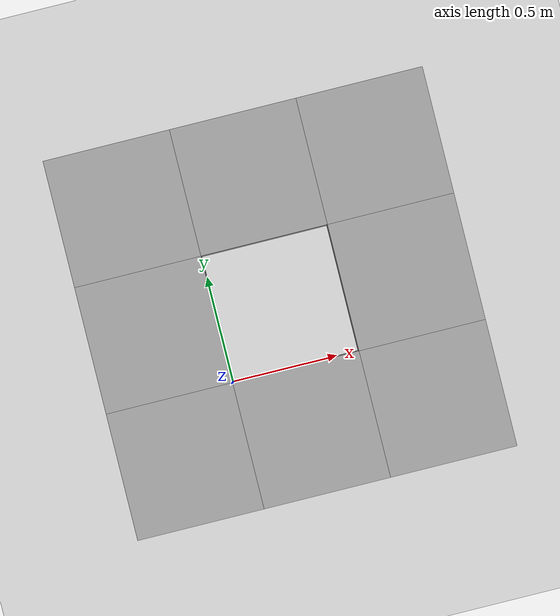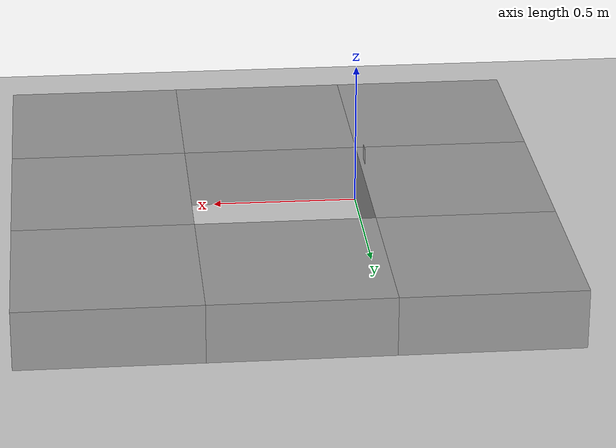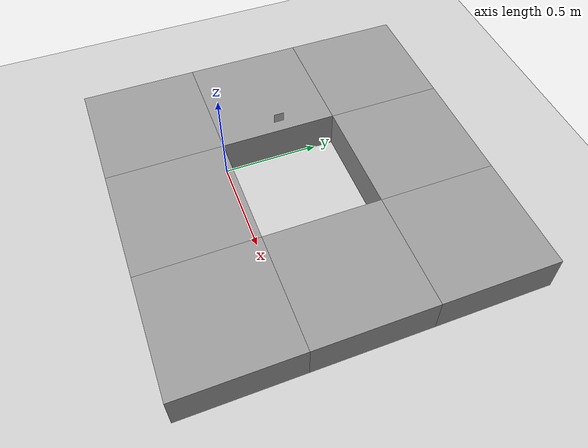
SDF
<sdf version="1.4">
 <world name="default">
  <scene><ambient>0.4 0.4 0.4 1</ambient><shadows>0</shadows></scene>
  <include><uri>model://ground_plane</uri></include>
  <include><uri>model://1_5</uri><pose>0.005 0.3 0.275 0 0 0</pose></include>
  <include><uri>model://sun</uri></include>
  <model name="unit_box_id_0">
   <static>true</static>
   <pose>-0.3 -0.3 0.1 0 0 0</pose>
   <link name="link">
    <inertial>
     <mass>1</mass>
     <inertia>
      <ixx>0.166667</ixx>
      <ixy>0</ixy>
      <ixz>0</ixz>
      <iyy>0.166667</iyy>
      <iyz>0</iyz>
      <izz>0.166667</izz>
     </inertia>
     <pose>-0.3 -0.3 0.1 0 0 0</pose>
    </inertial>
    <collision name="collision"><geometry><box><size>0.6 0.6 0.2</size></box></geometry></collision>
    <visual name="visual">
     <geometry><box><size>0.6 0.6 0.2</size></box></geometry>
     <material>
      <script><name>Gazebo/Grey</name><uri>file://media/materials/scripts/gazebo.material</uri></script>
     </material>
    </visual>
   </link>
  </model>
  <model name="unit_box_id_1">
   <static>true</static>
   <pose>-0.3 0.3 0.1 0 0 0</pose>
   <link name="link">
    <inertial>
     <mass>1</mass>
     <inertia>
      <ixx>0.166667</ixx>
      <ixy>0</ixy>
      <ixz>0</ixz>
      <iyy>0.166667</iyy>
      <iyz>0</iyz>
      <izz>0.166667</izz>
     </inertia>
     <pose>-0.3 0.3 0.1 0 0 0</pose>
    </inertial>
    <collision name="collision"><geometry><box><size>0.6 0.6 0.2</size></box></geometry></collision>
    <visual name="visual">
     <geometry><box><size>0.6 0.6 0.2</size></box></geometry>
     <material>
      <script><name>Gazebo/Grey</name><uri>file://media/materials/scripts/gazebo.material</uri></script>
     </material>
    </visual>
   </link>
  </model>
  <model name="unit_box_id_2">
   <static>true</static>
   <pose>-0.3 0.8999999999999999 0.1 0 0 0</pose>
   <link name="link">
    <inertial>
     <mass>1</mass>
     <inertia>
      <ixx>0.166667</ixx>
      <ixy>0</ixy>
      <ixz>0</ixz>
      <iyy>0.166667</iyy>
      <iyz>0</iyz>
      <izz>0.166667</izz>
     </inertia>
     <pose>-0.3 0.8999999999999999 0.1 0 0 0</pose>
    </inertial>
    <collision name="collision"><geometry><box><size>0.6 0.6 0.2</size></box></geometry></collision>
    <visual name="visual">
     <geometry><box><size>0.6 0.6 0.2</size></box></geometry>
     <material>
      <script><name>Gazebo/Grey</name><uri>file://media/materials/scripts/gazebo.material</uri></script>
     </material>
    </visual>
   </link>
  </model>
  <model name="unit_box_id_3">
   <static>true</static>
   <pose>0.8999999999999999 -0.3 0.1 0 0 0</pose>
   <link name="link">
    <inertial>
     <mass>1</mass>
     <inertia>
      <ixx>0.166667</ixx>
      <ixy>0</ixy>
      <ixz>0</ixz>
      <iyy>0.166667</iyy>
      <iyz>0</iyz>
      <izz>0.166667</izz>
     </inertia>
     <pose>0.8999999999999999 -0.3 0.1 0 0 0</pose>
    </inertial>
    <collision name="collision"><geometry><box><size>0.6 0.6 0.2</size></box></geometry></collision>
    <visual name="visual">
     <geometry><box><size>0.6 0.6 0.2</size></box></geometry>
     <material>
      <script><name>Gazebo/Grey</name><uri>file://media/materials/scripts/gazebo.material</uri></script>
     </material>
    </visual>
   </link>
  </model>
  <model name="unit_box_id_4">
   <static>true</static>
   <pose>0.8999999999999999 0.3 0.1 0 0 0</pose>
   <link name="link">
    <inertial>
     <mass>1</mass>
     <inertia>
      <ixx>0.166667</ixx>
      <ixy>0</ixy>
      <ixz>0</ixz>
      <iyy>0.166667</iyy>
      <iyz>0</iyz>
      <izz>0.166667</izz>
     </inertia>
     <pose>0.8999999999999999 0.3 0.1 0 0 0</pose>
    </inertial>
    <collision name="collision"><geometry><box><size>0.6 0.6 0.2</size></box></geometry></collision>
    <visual name="visual">
     <geometry><box><size>0.6 0.6 0.2</size></box></geometry>
     <material>
      <script><name>Gazebo/Grey</name><uri>file://media/materials/scripts/gazebo.material</uri></script>
     </material>
    </visual>
   </link>
  </model>
  <model name="unit_box_id_5">
   <static>true</static>
   <pose>0.8999999999999999 0.8999999999999999 0.1 0 0 0</pose>
   <link name="link">
    <inertial>
     <mass>1</mass>
     <inertia>
      <ixx>0.166667</ixx>
      <ixy>0</ixy>
      <ixz>0</ixz>
      <iyy>0.166667</iyy>
      <iyz>0</iyz>
      <izz>0.166667</izz>
     </inertia>
     <pose>0.8999999999999999 0.8999999999999999 0.1 0 0 0</pose>
    </inertial>
    <collision name="collision"><geometry><box><size>0.6 0.6 0.2</size></box></geometry></collision>
    <visual name="visual">
     <geometry><box><size>0.6 0.6 0.2</size></box></geometry>
     <material>
      <script><name>Gazebo/Grey</name><uri>file://media/materials/scripts/gazebo.material</uri></script>
     </material>
    </visual>
   </link>
  </model>
  <model name="unit_box_id_6">
   <static>true</static>
   <pose>0.3 -0.3 0.1 0 0 0</pose>
   <link name="link">
    <inertial>
     <mass>1</mass>
     <inertia>
      <ixx>0.166667</ixx>
      <ixy>0</ixy>
      <ixz>0</ixz>
      <iyy>0.166667</iyy>
      <iyz>0</iyz>
      <izz>0.166667</izz>
     </inertia>
     <pose>0.3 -0.3 0.1 0 0 0</pose>
    </inertial>
    <collision name="collision"><geometry><box><size>0.6 0.6 0.2</size></box></geometry></collision>
    <visual name="visual">
     <geometry><box><size>0.6 0.6 0.2</size></box></geometry>
     <material>
      <script><name>Gazebo/Grey</name><uri>file://media/materials/scripts/gazebo.material</uri></script>
     </material>
    </visual>
   </link>
  </model>
  <model name="unit_box_id_7">
   <static>true</static>
   <pose>0.3 0.8999999999999999 0.1 0 0 0</pose>
   <link name="link">
    <inertial>
     <mass>1</mass>
     <inertia>
      <ixx>0.166667</ixx>
      <ixy>0</ixy>
      <ixz>0</ixz>
      <iyy>0.166667</iyy>
      <iyz>0</iyz>
      <izz>0.166667</izz>
     </inertia>
     <pose>0.3 0.8999999999999999 0.1 0 0 0</pose>
    </inertial>
    <collision name="collision"><geometry><box><size>0.6 0.6 0.2</size></box></geometry></collision>
    <visual name="visual">
     <geometry><box><size>0.6 0.6 0.2</size></box></geometry>
     <material>
      <script><name>Gazebo/Grey</name><uri>file://media/materials/scripts/gazebo.material</uri></script>
     </material>
    </visual>
   </link>
  </model>
 </world>
</sdf>

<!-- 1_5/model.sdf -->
<sdf version="1.6">
  <model name="1_5">
    <static>true</static>
    <link name="link">
      <visual name="visual">
        <geometry>
          <mesh>
            <uri>model://1_5/meshes/1_5.dae</uri>
          <scale>0.1 0.1 0.1</scale></mesh>
        </geometry>
      </visual>
    </link>
  </model>
</sdf>
